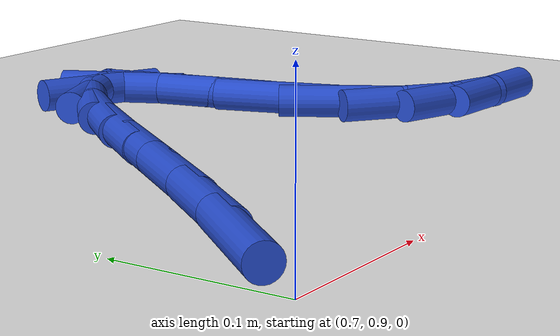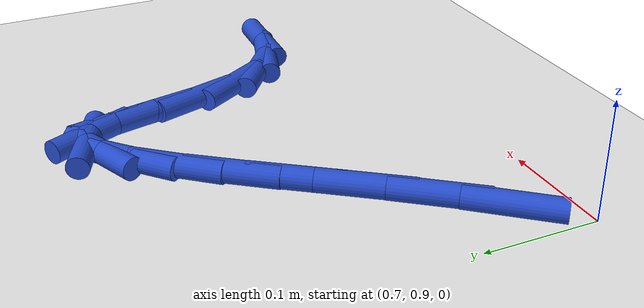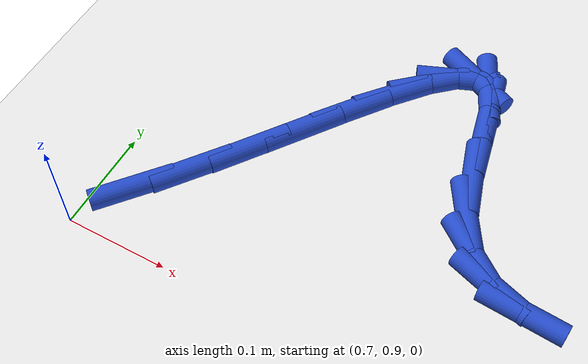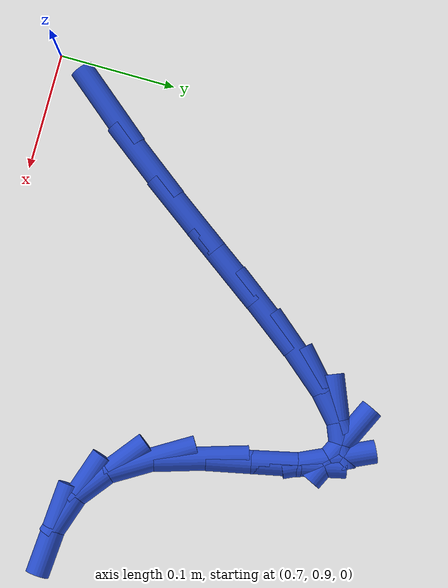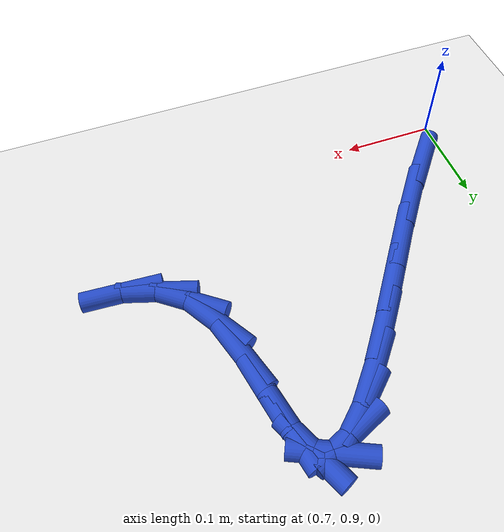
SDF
<sdf version="1.6">
 <world name="default">
  <model name="ground_plane">
   <static>1</static>
   <link name="link">
    <collision name="collision">
     <geometry><plane><normal>0 0 1</normal><size>100 100</size></plane></geometry>
     <surface><friction><ode><mu>100</mu><mu2>50</mu2></ode></friction></surface>
    </collision>
    <visual name="visual">
     <cast_shadows>0</cast_shadows>
     <geometry><plane><normal>0 0 1</normal><size>100 100</size></plane></geometry>
     <material>
      <script><uri>file://media/materials/scripts/gazebo.material</uri><name>Gazebo/WhiteGlow</name></script>
     </material>
    </visual>
   </link>
  </model>
  <model name="line">
   <link name="link_32">
    <pose>0.7332588014908799 0.9517584872847562 0.01 0 1.57 0.8811730232288056</pose>
    <collision name="collision">
     <geometry><cylinder><radius>0.01</radius><length>0.08</length></cylinder></geometry>
    </collision>
    <visual name="visual">
     <material>
      <script><name>Gazebo/Blue</name><uri>file://media/materials/scripts/gazebo.material</uri></script>
     </material>
     <geometry><cylinder><radius>0.01</radius><length>0.08</length></cylinder></geometry>
    </visual>
   </link>
   <link name="link_33">
    <pose>0.7688287113234029 0.9948890561094166 0.01 0 1.57 0.9243484792010429</pose>
    <collision name="collision">
     <geometry><cylinder><radius>0.01</radius><length>0.08</length></cylinder></geometry>
    </collision>
    <visual name="visual">
     <material>
      <script><name>Gazebo/Blue</name><uri>file://media/materials/scripts/gazebo.material</uri></script>
     </material>
     <geometry><cylinder><radius>0.01</radius><length>0.08</length></cylinder></geometry>
    </visual>
   </link>
   <link name="link_34">
    <pose>0.802666027757669 1.0397295897030845 0.01 0 1.57 0.9472548698115287</pose>
    <collision name="collision">
     <geometry><cylinder><radius>0.01</radius><length>0.08</length></cylinder></geometry>
    </collision>
    <visual name="visual">
     <material>
      <script><name>Gazebo/Blue</name><uri>file://media/materials/scripts/gazebo.material</uri></script>
     </material>
     <geometry><cylinder><radius>0.01</radius><length>0.08</length></cylinder></geometry>
    </visual>
   </link>
   <link name="link_35">
    <pose>0.8345136067916895 1.0840072926485156 0.01 0 1.57 0.9505593973106484</pose>
    <collision name="collision">
     <geometry><cylinder><radius>0.01</radius><length>0.08</length></cylinder></geometry>
    </collision>
    <visual name="visual">
     <material>
      <script><name>Gazebo/Blue</name><uri>file://media/materials/scripts/gazebo.material</uri></script>
     </material>
     <geometry><cylinder><radius>0.01</radius><length>0.08</length></cylinder></geometry>
    </visual>
   </link>
   <link name="link_36">
    <pose>0.8641143044234756 1.1254493695284646 0.01 0 1.57 0.9300057607816296</pose>
    <collision name="collision">
     <geometry><cylinder><radius>0.01</radius><length>0.08</length></cylinder></geometry>
    </collision>
    <visual name="visual">
     <material>
      <script><name>Gazebo/Blue</name><uri>file://media/materials/scripts/gazebo.material</uri></script>
     </material>
     <geometry><cylinder><radius>0.01</radius><length>0.08</length></cylinder></geometry>
    </visual>
   </link>
   <link name="link_37">
    <pose>0.8912109766510389 1.1617830249256875 0.01 0 1.57 0.871823621935451</pose>
    <collision name="collision">
     <geometry><cylinder><radius>0.01</radius><length>0.08</length></cylinder></geometry>
    </collision>
    <visual name="visual">
     <material>
      <script><name>Gazebo/Blue</name><uri>file://media/materials/scripts/gazebo.material</uri></script>
     </material>
     <geometry><cylinder><radius>0.01</radius><length>0.08</length></cylinder></geometry>
    </visual>
   </link>
   <link name="link_38">
    <pose>0.9155464794723907 1.1907354634229397 0.01 0 1.57 0.7357349190350344</pose>
    <collision name="collision">
     <geometry><cylinder><radius>0.01</radius><length>0.08</length></cylinder></geometry>
    </collision>
    <visual name="visual">
     <material>
      <script><name>Gazebo/Blue</name><uri>file://media/materials/scripts/gazebo.material</uri></script>
     </material>
     <geometry><cylinder><radius>0.01</radius><length>0.08</length></cylinder></geometry>
    </visual>
   </link>
   <link name="link_39">
    <pose>0.9368636688855416 1.2100338896029763 0.01 0 1.57 0.38788703605239805</pose>
    <collision name="collision">
     <geometry><cylinder><radius>0.01</radius><length>0.08</length></cylinder></geometry>
    </collision>
    <visual name="visual">
     <material>
      <script><name>Gazebo/Blue</name><uri>file://media/materials/scripts/gazebo.material</uri></script>
     </material>
     <geometry><cylinder><radius>0.01</radius><length>0.08</length></cylinder></geometry>
    </visual>
   </link>
   <link name="link_40">
    <pose>0.9549054008885036 1.2174055080485522 0.01 0 1.57 -0.4398515289322776</pose>
    <collision name="collision">
     <geometry><cylinder><radius>0.01</radius><length>0.08</length></cylinder></geometry>
    </collision>
    <visual name="visual">
     <material>
      <script><name>Gazebo/Blue</name><uri>file://media/materials/scripts/gazebo.material</uri></script>
     </material>
     <geometry><cylinder><radius>0.01</radius><length>0.08</length></cylinder></geometry>
    </visual>
   </link>
   <link name="link_41">
    <pose>0.9694145314792878 1.2105775233424232 0.01 0 1.57 -1.1345703052887388</pose>
    <collision name="collision">
     <geometry><cylinder><radius>0.01</radius><length>0.08</length></cylinder></geometry>
    </collision>
    <visual name="visual">
     <material>
      <script><name>Gazebo/Blue</name><uri>file://media/materials/scripts/gazebo.material</uri></script>
     </material>
     <geometry><cylinder><radius>0.01</radius><length>0.08</length></cylinder></geometry>
    </visual>
   </link>
   <link name="link_42">
    <pose>0.9801926773302033 1.1874572992600771 0.01 0 1.57 -1.3466487477814062</pose>
    <collision name="collision">
     <geometry><cylinder><radius>0.01</radius><length>0.08</length></cylinder></geometry>
    </collision>
    <visual name="visual">
     <material>
      <script><name>Gazebo/Blue</name><uri>file://media/materials/scripts/gazebo.material</uri></script>
     </material>
     <geometry><cylinder><radius>0.01</radius><length>0.08</length></cylinder></geometry>
    </visual>
   </link>
   <link name="link_43">
    <pose>0.988579727774339 1.1506685164688686 0.01 0 1.57 -1.3637411586916737</pose>
    <collision name="collision">
     <geometry><cylinder><radius>0.01</radius><length>0.08</length></cylinder></geometry>
    </collision>
    <visual name="visual">
     <material>
      <script><name>Gazebo/Blue</name><uri>file://media/materials/scripts/gazebo.material</uri></script>
     </material>
     <geometry><cylinder><radius>0.01</radius><length>0.08</length></cylinder></geometry>
    </visual>
   </link>
   <link name="link_44">
    <pose>0.9975653738728121 1.1078931186843897 0.01 0 1.57 -1.2702511035892534</pose>
    <collision name="collision">
     <geometry><cylinder><radius>0.01</radius><length>0.08</length></cylinder></geometry>
    </collision>
    <visual name="visual">
     <material>
      <script><name>Gazebo/Blue</name><uri>file://media/materials/scripts/gazebo.material</uri></script>
     </material>
     <geometry><cylinder><radius>0.01</radius><length>0.08</length></cylinder></geometry>
    </visual>
   </link>
   <link name="link_45">
    <pose>1.0102204074381134 1.0670617030979097 0.01 0 1.57 -1.023911564125688</pose>
    <collision name="collision">
     <geometry><cylinder><radius>0.01</radius><length>0.08</length></cylinder></geometry>
    </collision>
    <visual name="visual">
     <material>
      <script><name>Gazebo/Blue</name><uri>file://media/materials/scripts/gazebo.material</uri></script>
     </material>
     <geometry><cylinder><radius>0.01</radius><length>0.08</length></cylinder></geometry>
    </visual>
   </link>
   <link name="link_46">
    <pose>1.0293908697085046 1.0355741730770303 0.01 0 1.57 -0.660660819883588</pose>
    <collision name="collision">
     <geometry><cylinder><radius>0.01</radius><length>0.08</length></cylinder></geometry>
    </collision>
    <visual name="visual">
     <material>
      <script><name>Gazebo/Blue</name><uri>file://media/materials/scripts/gazebo.material</uri></script>
     </material>
     <geometry><cylinder><radius>0.01</radius><length>0.08</length></cylinder></geometry>
    </visual>
   </link>
   <link name="link_47">
    <pose>1.0555552871307003 1.0152401215679852 0.01 0 1.57 -0.32121999910336907</pose>
    <collision name="collision">
     <geometry><cylinder><radius>0.01</radius><length>0.08</length></cylinder></geometry>
    </collision>
    <visual name="visual">
     <material>
      <script><name>Gazebo/Blue</name><uri>file://media/materials/scripts/gazebo.material</uri></script>
     </material>
     <geometry><cylinder><radius>0.01</radius><length>0.08</length></cylinder></geometry>
    </visual>
   </link>
   <link name="link_48">
    <pose>1.0877736661340152 1.004519651467569 0.01 0 1.57 -0.07202446698710534</pose>
    <collision name="collision">
     <geometry><cylinder><radius>0.01</radius><length>0.08</length></cylinder></geometry>
    </collision>
    <visual name="visual">
     <material>
      <script><name>Gazebo/Blue</name><uri>file://media/materials/scripts/gazebo.material</uri></script>
     </material>
     <geometry><cylinder><radius>0.01</radius><length>0.08</length></cylinder></geometry>
    </visual>
   </link>
  </model>
 </world>
</sdf>
